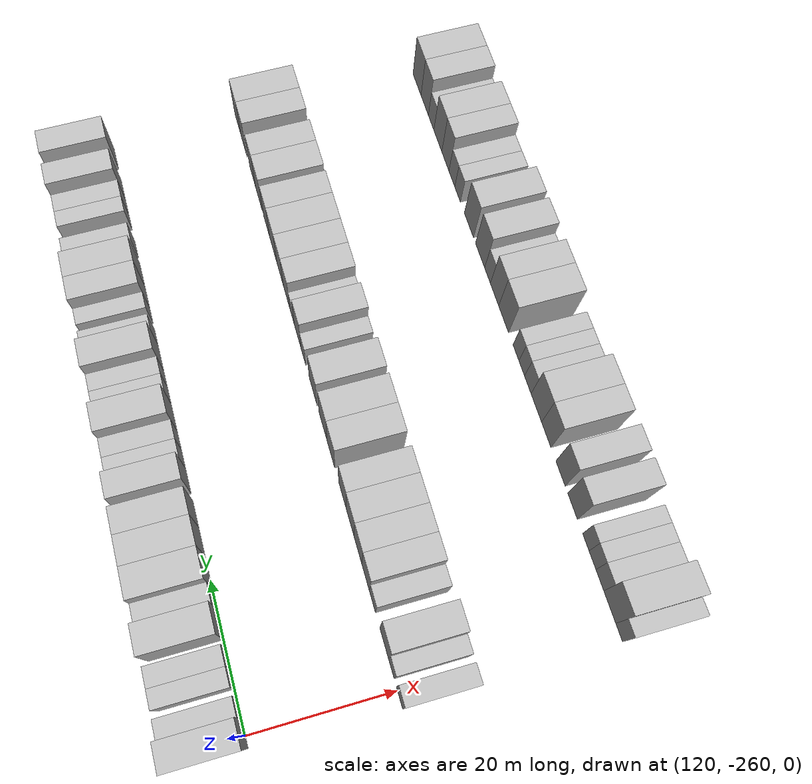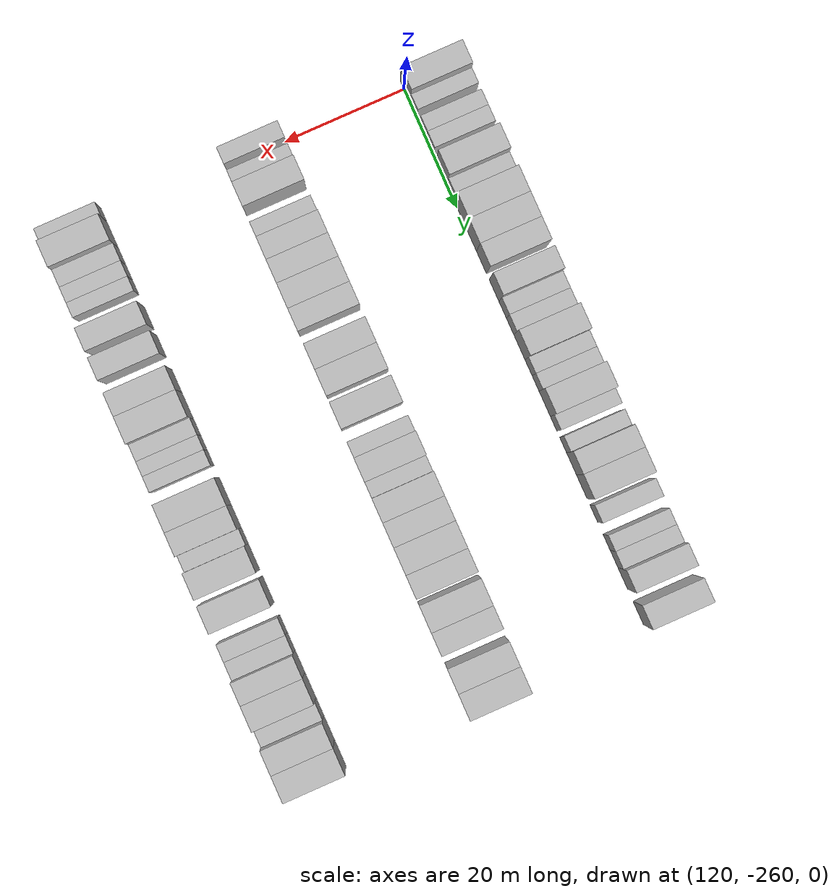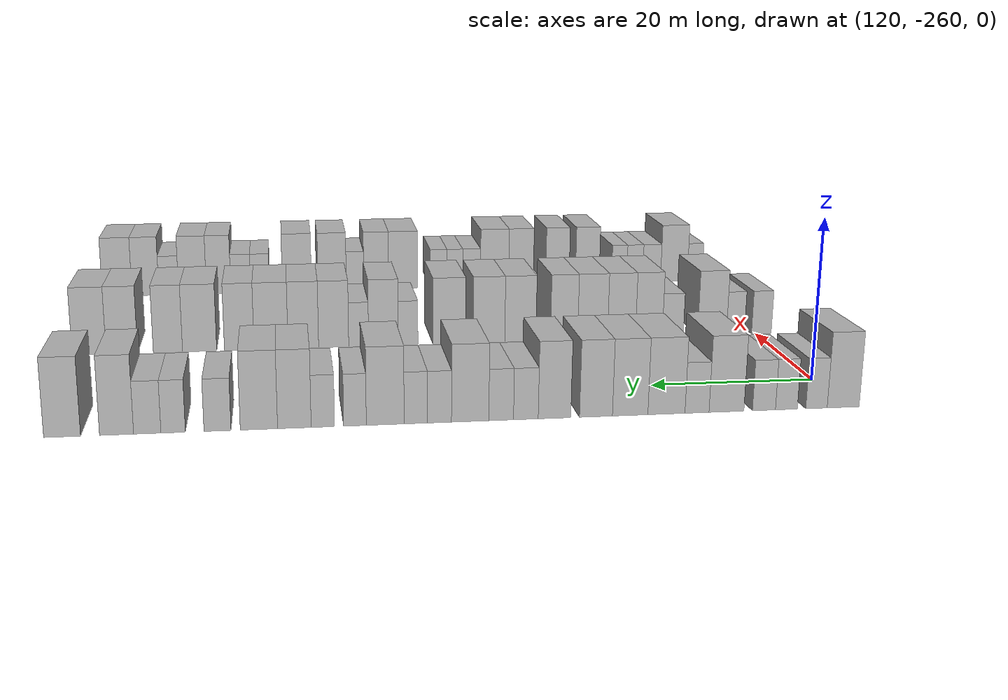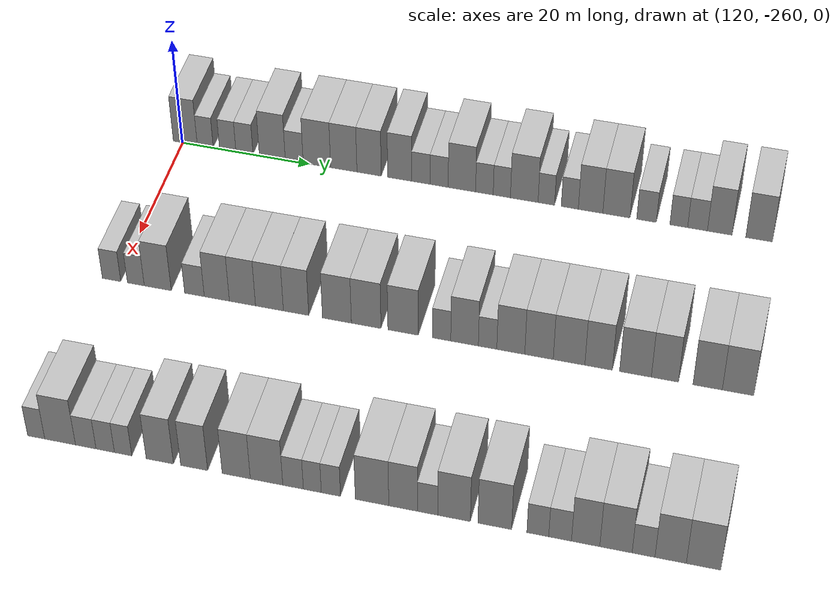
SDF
<sdf version="1.6">
 <world name="default">
  <model name="building_727">
   <static>1</static>
   <pose>115.0000 -259.6369 0 0.000000 0.000000 0.000000</pose>
   <link name="link">
    <pose>0 0 4.50 0 0 0</pose>
    <collision name="collision"><geometry><box><size>10.0000 3.8024 9.0000</size></box></geometry></collision>
    <visual name="visual">
     <cast_shadows>0</cast_shadows>
     <geometry><box><size>10.0000 3.8024 9.0000</size></box></geometry>
     <material>
      <script>
       <uri>model://HANNAS_wall/materials/scripts</uri>
       <uri>model://HANNAS_wall/materials/textures</uri>
       <name>vrc/HANNAS_wall</name>
      </script>
     </material>
    </visual>
   </link>
  </model>
  <model name="building_728">
   <static>1</static>
   <pose>115.0000 -256.4676 0 0.000000 0.000000 0.000000</pose>
   <link name="link">
    <pose>0 0 3.00 0 0 0</pose>
    <collision name="collision"><geometry><box><size>10.0000 2.5362 6.0000</size></box></geometry></collision>
    <visual name="visual">
     <cast_shadows>0</cast_shadows>
     <geometry><box><size>10.0000 2.5362 6.0000</size></box></geometry>
     <material>
      <script>
       <uri>model://HANNAS_wall/materials/scripts</uri>
       <uri>model://HANNAS_wall/materials/textures</uri>
       <name>vrc/HANNAS_wall</name>
      </script>
     </material>
    </visual>
   </link>
  </model>
  <model name="building_729">
   <static>1</static>
   <pose>115.0000 -252.9074 0 0.000000 0.000000 0.000000</pose>
   <link name="link">
    <pose>0 0 3.00 0 0 0</pose>
    <collision name="collision"><geometry><box><size>10.0000 2.5841 6.0000</size></box></geometry></collision>
    <visual name="visual">
     <cast_shadows>0</cast_shadows>
     <geometry><box><size>10.0000 2.5841 6.0000</size></box></geometry>
     <material>
      <script>
       <uri>model://HANNAS_wall/materials/scripts</uri>
       <uri>model://HANNAS_wall/materials/textures</uri>
       <name>vrc/HANNAS_wall</name>
      </script>
     </material>
    </visual>
   </link>
  </model>
  <model name="building_730">
   <static>1</static>
   <pose>115.0000 -250.2623 0 0.000000 0.000000 0.000000</pose>
   <link name="link">
    <pose>0 0 3.00 0 0 0</pose>
    <collision name="collision"><geometry><box><size>10.0000 2.7061 6.0000</size></box></geometry></collision>
    <visual name="visual">
     <cast_shadows>0</cast_shadows>
     <geometry><box><size>10.0000 2.7061 6.0000</size></box></geometry>
     <material>
      <script>
       <uri>model://HANNAS_wall/materials/scripts</uri>
       <uri>model://HANNAS_wall/materials/textures</uri>
       <name>vrc/HANNAS_wall</name>
      </script>
     </material>
    </visual>
   </link>
  </model>
  <model name="building_731">
   <static>1</static>
   <pose>115.0000 -245.8719 0 0.000000 0.000000 0.000000</pose>
   <link name="link">
    <pose>0 0 4.50 0 0 0</pose>
    <collision name="collision"><geometry><box><size>10.0000 4.0746 9.0000</size></box></geometry></collision>
    <visual name="visual">
     <cast_shadows>0</cast_shadows>
     <geometry><box><size>10.0000 4.0746 9.0000</size></box></geometry>
     <material>
      <script>
       <uri>model://HANNAS_wall/materials/scripts</uri>
       <uri>model://HANNAS_wall/materials/textures</uri>
       <name>vrc/HANNAS_wall</name>
      </script>
     </material>
    </visual>
   </link>
  </model>
  <model name="building_732">
   <static>1</static>
   <pose>115.0000 -242.4343 0 0.000000 0.000000 0.000000</pose>
   <link name="link">
    <pose>0 0 3.00 0 0 0</pose>
    <collision name="collision"><geometry><box><size>10.0000 2.8007 6.0000</size></box></geometry></collision>
    <visual name="visual">
     <cast_shadows>0</cast_shadows>
     <geometry><box><size>10.0000 2.8007 6.0000</size></box></geometry>
     <material>
      <script>
       <uri>model://HANNAS_wall/materials/scripts</uri>
       <uri>model://HANNAS_wall/materials/textures</uri>
       <name>vrc/HANNAS_wall</name>
      </script>
     </material>
    </visual>
   </link>
  </model>
  <model name="building_733">
   <static>1</static>
   <pose>115.0000 -238.8867 0 0.000000 0.000000 0.000000</pose>
   <link name="link">
    <pose>0 0 4.50 0 0 0</pose>
    <collision name="collision"><geometry><box><size>10.0000 4.2944 9.0000</size></box></geometry></collision>
    <visual name="visual">
     <cast_shadows>0</cast_shadows>
     <geometry><box><size>10.0000 4.2944 9.0000</size></box></geometry>
     <material>
      <script>
       <uri>model://HANNAS_wall/materials/scripts</uri>
       <uri>model://HANNAS_wall/materials/textures</uri>
       <name>vrc/HANNAS_wall</name>
      </script>
     </material>
    </visual>
   </link>
  </model>
  <model name="building_734">
   <static>1</static>
   <pose>115.0000 -234.6988 0 0.000000 0.000000 0.000000</pose>
   <link name="link">
    <pose>0 0 4.50 0 0 0</pose>
    <collision name="collision"><geometry><box><size>10.0000 4.0814 9.0000</size></box></geometry></collision>
    <visual name="visual">
     <cast_shadows>0</cast_shadows>
     <geometry><box><size>10.0000 4.0814 9.0000</size></box></geometry>
     <material>
      <script>
       <uri>model://HANNAS_wall/materials/scripts</uri>
       <uri>model://HANNAS_wall/materials/textures</uri>
       <name>vrc/HANNAS_wall</name>
      </script>
     </material>
    </visual>
   </link>
  </model>
  <model name="building_735">
   <static>1</static>
   <pose>115.0000 -230.7749 0 0.000000 0.000000 0.000000</pose>
   <link name="link">
    <pose>0 0 4.50 0 0 0</pose>
    <collision name="collision"><geometry><box><size>10.0000 3.7665 9.0000</size></box></geometry></collision>
    <visual name="visual">
     <cast_shadows>0</cast_shadows>
     <geometry><box><size>10.0000 3.7665 9.0000</size></box></geometry>
     <material>
      <script>
       <uri>model://HANNAS_wall/materials/scripts</uri>
       <uri>model://HANNAS_wall/materials/textures</uri>
       <name>vrc/HANNAS_wall</name>
      </script>
     </material>
    </visual>
   </link>
  </model>
  <model name="building_736">
   <static>1</static>
   <pose>115.0000 -226.0417 0 0.000000 0.000000 0.000000</pose>
   <link name="link">
    <pose>0 0 4.50 0 0 0</pose>
    <collision name="collision"><geometry><box><size>10.0000 3.7000 9.0000</size></box></geometry></collision>
    <visual name="visual">
     <cast_shadows>0</cast_shadows>
     <geometry><box><size>10.0000 3.7000 9.0000</size></box></geometry>
     <material>
      <script>
       <uri>model://HANNAS_wall/materials/scripts</uri>
       <uri>model://HANNAS_wall/materials/textures</uri>
       <name>vrc/HANNAS_wall</name>
      </script>
     </material>
    </visual>
   </link>
  </model>
  <model name="building_737">
   <static>1</static>
   <pose>115.0000 -222.7960 0 0.000000 0.000000 0.000000</pose>
   <link name="link">
    <pose>0 0 3.00 0 0 0</pose>
    <collision name="collision"><geometry><box><size>10.0000 2.7913 6.0000</size></box></geometry></collision>
    <visual name="visual">
     <cast_shadows>0</cast_shadows>
     <geometry><box><size>10.0000 2.7913 6.0000</size></box></geometry>
     <material>
      <script>
       <uri>model://HANNAS_wall/materials/scripts</uri>
       <uri>model://HANNAS_wall/materials/textures</uri>
       <name>vrc/HANNAS_wall</name>
      </script>
     </material>
    </visual>
   </link>
  </model>
  <model name="building_738">
   <static>1</static>
   <pose>115.0000 -220.0054 0 0.000000 0.000000 0.000000</pose>
   <link name="link">
    <pose>0 0 3.00 0 0 0</pose>
    <collision name="collision"><geometry><box><size>10.0000 2.7899 6.0000</size></box></geometry></collision>
    <visual name="visual">
     <cast_shadows>0</cast_shadows>
     <geometry><box><size>10.0000 2.7899 6.0000</size></box></geometry>
     <material>
      <script>
       <uri>model://HANNAS_wall/materials/scripts</uri>
       <uri>model://HANNAS_wall/materials/textures</uri>
       <name>vrc/HANNAS_wall</name>
      </script>
     </material>
    </visual>
   </link>
  </model>
  <model name="building_739">
   <static>1</static>
   <pose>115.0000 -216.5173 0 0.000000 0.000000 0.000000</pose>
   <link name="link">
    <pose>0 0 4.50 0 0 0</pose>
    <collision name="collision"><geometry><box><size>10.0000 4.1864 9.0000</size></box></geometry></collision>
    <visual name="visual">
     <cast_shadows>0</cast_shadows>
     <geometry><box><size>10.0000 4.1864 9.0000</size></box></geometry>
     <material>
      <script>
       <uri>model://HANNAS_wall/materials/scripts</uri>
       <uri>model://HANNAS_wall/materials/textures</uri>
       <name>vrc/HANNAS_wall</name>
      </script>
     </material>
    </visual>
   </link>
  </model>
  <model name="building_740">
   <static>1</static>
   <pose>115.0000 -213.0869 0 0.000000 0.000000 0.000000</pose>
   <link name="link">
    <pose>0 0 3.00 0 0 0</pose>
    <collision name="collision"><geometry><box><size>10.0000 2.6744 6.0000</size></box></geometry></collision>
    <visual name="visual">
     <cast_shadows>0</cast_shadows>
     <geometry><box><size>10.0000 2.6744 6.0000</size></box></geometry>
     <material>
      <script>
       <uri>model://HANNAS_wall/materials/scripts</uri>
       <uri>model://HANNAS_wall/materials/textures</uri>
       <name>vrc/HANNAS_wall</name>
      </script>
     </material>
    </visual>
   </link>
  </model>
  <model name="building_741">
   <static>1</static>
   <pose>115.0000 -210.4464 0 0.000000 0.000000 0.000000</pose>
   <link name="link">
    <pose>0 0 3.00 0 0 0</pose>
    <collision name="collision"><geometry><box><size>10.0000 2.6066 6.0000</size></box></geometry></collision>
    <visual name="visual">
     <cast_shadows>0</cast_shadows>
     <geometry><box><size>10.0000 2.6066 6.0000</size></box></geometry>
     <material>
      <script>
       <uri>model://HANNAS_wall/materials/scripts</uri>
       <uri>model://HANNAS_wall/materials/textures</uri>
       <name>vrc/HANNAS_wall</name>
      </script>
     </material>
    </visual>
   </link>
  </model>
  <model name="building_742">
   <static>1</static>
   <pose>115.0000 -207.0546 0 0.000000 0.000000 0.000000</pose>
   <link name="link">
    <pose>0 0 4.50 0 0 0</pose>
    <collision name="collision"><geometry><box><size>10.0000 4.1771 9.0000</size></box></geometry></collision>
    <visual name="visual">
     <cast_shadows>0</cast_shadows>
     <geometry><box><size>10.0000 4.1771 9.0000</size></box></geometry>
     <material>
      <script>
       <uri>model://HANNAS_wall/materials/scripts</uri>
       <uri>model://HANNAS_wall/materials/textures</uri>
       <name>vrc/HANNAS_wall</name>
      </script>
     </material>
    </visual>
   </link>
  </model>
  <model name="building_743">
   <static>1</static>
   <pose>115.0000 -203.7201 0 0.000000 0.000000 0.000000</pose>
   <link name="link">
    <pose>0 0 3.00 0 0 0</pose>
    <collision name="collision"><geometry><box><size>10.0000 2.4919 6.0000</size></box></geometry></collision>
    <visual name="visual">
     <cast_shadows>0</cast_shadows>
     <geometry><box><size>10.0000 2.4919 6.0000</size></box></geometry>
     <material>
      <script>
       <uri>model://HANNAS_wall/materials/scripts</uri>
       <uri>model://HANNAS_wall/materials/textures</uri>
       <name>vrc/HANNAS_wall</name>
      </script>
     </material>
    </visual>
   </link>
  </model>
  <model name="building_744">
   <static>1</static>
   <pose>115.0000 -200.1933 0 0.000000 0.000000 0.000000</pose>
   <link name="link">
    <pose>0 0 3.00 0 0 0</pose>
    <collision name="collision"><geometry><box><size>10.0000 2.5618 6.0000</size></box></geometry></collision>
    <visual name="visual">
     <cast_shadows>0</cast_shadows>
     <geometry><box><size>10.0000 2.5618 6.0000</size></box></geometry>
     <material>
      <script>
       <uri>model://HANNAS_wall/materials/scripts</uri>
       <uri>model://HANNAS_wall/materials/textures</uri>
       <name>vrc/HANNAS_wall</name>
      </script>
     </material>
    </visual>
   </link>
  </model>
  <model name="building_745">
   <static>1</static>
   <pose>115.0000 -197.0801 0 0.000000 0.000000 0.000000</pose>
   <link name="link">
    <pose>0 0 4.50 0 0 0</pose>
    <collision name="collision"><geometry><box><size>10.0000 3.6646 9.0000</size></box></geometry></collision>
    <visual name="visual">
     <cast_shadows>0</cast_shadows>
     <geometry><box><size>10.0000 3.6646 9.0000</size></box></geometry>
     <material>
      <script>
       <uri>model://HANNAS_wall/materials/scripts</uri>
       <uri>model://HANNAS_wall/materials/textures</uri>
       <name>vrc/HANNAS_wall</name>
      </script>
     </material>
    </visual>
   </link>
  </model>
  <model name="building_746">
   <static>1</static>
   <pose>115.0000 -193.2244 0 0.000000 0.000000 0.000000</pose>
   <link name="link">
    <pose>0 0 4.50 0 0 0</pose>
    <collision name="collision"><geometry><box><size>10.0000 4.0468 9.0000</size></box></geometry></collision>
    <visual name="visual">
     <cast_shadows>0</cast_shadows>
     <geometry><box><size>10.0000 4.0468 9.0000</size></box></geometry>
     <material>
      <script>
       <uri>model://HANNAS_wall/materials/scripts</uri>
       <uri>model://HANNAS_wall/materials/textures</uri>
       <name>vrc/HANNAS_wall</name>
      </script>
     </material>
    </visual>
   </link>
  </model>
  <model name="building_747">
   <static>1</static>
   <pose>115.0000 -188.7457 0 0.000000 0.000000 0.000000</pose>
   <link name="link">
    <pose>0 0 3.00 0 0 0</pose>
    <collision name="collision"><geometry><box><size>10.0000 2.9104 6.0000</size></box></geometry></collision>
    <visual name="visual">
     <cast_shadows>0</cast_shadows>
     <geometry><box><size>10.0000 2.9104 6.0000</size></box></geometry>
     <material>
      <script>
       <uri>model://HANNAS_wall/materials/scripts</uri>
       <uri>model://HANNAS_wall/materials/textures</uri>
       <name>vrc/HANNAS_wall</name>
      </script>
     </material>
    </visual>
   </link>
  </model>
  <model name="building_748">
   <static>1</static>
   <pose>115.0000 -183.9819 0 0.000000 0.000000 0.000000</pose>
   <link name="link">
    <pose>0 0 3.00 0 0 0</pose>
    <collision name="collision"><geometry><box><size>10.0000 2.6174 6.0000</size></box></geometry></collision>
    <visual name="visual">
     <cast_shadows>0</cast_shadows>
     <geometry><box><size>10.0000 2.6174 6.0000</size></box></geometry>
     <material>
      <script>
       <uri>model://HANNAS_wall/materials/scripts</uri>
       <uri>model://HANNAS_wall/materials/textures</uri>
       <name>vrc/HANNAS_wall</name>
      </script>
     </material>
    </visual>
   </link>
  </model>
  <model name="building_749">
   <static>1</static>
   <pose>115.0000 -181.2179 0 0.000000 0.000000 0.000000</pose>
   <link name="link">
    <pose>0 0 3.00 0 0 0</pose>
    <collision name="collision"><geometry><box><size>10.0000 2.9106 6.0000</size></box></geometry></collision>
    <visual name="visual">
     <cast_shadows>0</cast_shadows>
     <geometry><box><size>10.0000 2.9106 6.0000</size></box></geometry>
     <material>
      <script>
       <uri>model://HANNAS_wall/materials/scripts</uri>
       <uri>model://HANNAS_wall/materials/textures</uri>
       <name>vrc/HANNAS_wall</name>
      </script>
     </material>
    </visual>
   </link>
  </model>
  <model name="building_750">
   <static>1</static>
   <pose>115.0000 -177.9527 0 0.000000 0.000000 0.000000</pose>
   <link name="link">
    <pose>0 0 4.50 0 0 0</pose>
    <collision name="collision"><geometry><box><size>10.0000 3.6199 9.0000</size></box></geometry></collision>
    <visual name="visual">
     <cast_shadows>0</cast_shadows>
     <geometry><box><size>10.0000 3.6199 9.0000</size></box></geometry>
     <material>
      <script>
       <uri>model://HANNAS_wall/materials/scripts</uri>
       <uri>model://HANNAS_wall/materials/textures</uri>
       <name>vrc/HANNAS_wall</name>
      </script>
     </material>
    </visual>
   </link>
  </model>
  <model name="building_751">
   <static>1</static>
   <pose>115.0000 -172.1994 0 0.000000 0.000000 0.000000</pose>
   <link name="link">
    <pose>0 0 4.50 0 0 0</pose>
    <collision name="collision"><geometry><box><size>10.0000 3.8867 9.0000</size></box></geometry></collision>
    <visual name="visual">
     <cast_shadows>0</cast_shadows>
     <geometry><box><size>10.0000 3.8867 9.0000</size></box></geometry>
     <material>
      <script>
       <uri>model://HANNAS_wall/materials/scripts</uri>
       <uri>model://HANNAS_wall/materials/textures</uri>
       <name>vrc/HANNAS_wall</name>
      </script>
     </material>
    </visual>
   </link>
  </model>
  <model name="building_958">
   <static>1</static>
   <pose>145.0000 -260.8708 0 0.000000 0.000000 0.000000</pose>
   <link name="link">
    <pose>0 0 3.00 0 0 0</pose>
    <collision name="collision"><geometry><box><size>10.0000 2.7729 6.0000</size></box></geometry></collision>
    <visual name="visual">
     <cast_shadows>0</cast_shadows>
     <geometry><box><size>10.0000 2.7729 6.0000</size></box></geometry>
     <material>
      <script>
       <uri>model://HANNAS_wall/materials/scripts</uri>
       <uri>model://HANNAS_wall/materials/textures</uri>
       <name>vrc/HANNAS_wall</name>
      </script>
     </material>
    </visual>
   </link>
  </model>
  <model name="building_959">
   <static>1</static>
   <pose>145.0000 -257.2226 0 0.000000 0.000000 0.000000</pose>
   <link name="link">
    <pose>0 0 3.00 0 0 0</pose>
    <collision name="collision"><geometry><box><size>10.0000 2.5235 6.0000</size></box></geometry></collision>
    <visual name="visual">
     <cast_shadows>0</cast_shadows>
     <geometry><box><size>10.0000 2.5235 6.0000</size></box></geometry>
     <material>
      <script>
       <uri>model://HANNAS_wall/materials/scripts</uri>
       <uri>model://HANNAS_wall/materials/textures</uri>
       <name>vrc/HANNAS_wall</name>
      </script>
     </material>
    </visual>
   </link>
  </model>
  <model name="building_960">
   <static>1</static>
   <pose>145.0000 -253.9446 0 0.000000 0.000000 0.000000</pose>
   <link name="link">
    <pose>0 0 4.50 0 0 0</pose>
    <collision name="collision"><geometry><box><size>10.0000 4.0325 9.0000</size></box></geometry></collision>
    <visual name="visual">
     <cast_shadows>0</cast_shadows>
     <geometry><box><size>10.0000 4.0325 9.0000</size></box></geometry>
     <material>
      <script>
       <uri>model://HANNAS_wall/materials/scripts</uri>
       <uri>model://HANNAS_wall/materials/textures</uri>
       <name>vrc/HANNAS_wall</name>
      </script>
     </material>
    </visual>
   </link>
  </model>
  <model name="building_961">
   <static>1</static>
   <pose>145.0000 -248.4725 0 0.000000 0.000000 0.000000</pose>
   <link name="link">
    <pose>0 0 3.00 0 0 0</pose>
    <collision name="collision"><geometry><box><size>10.0000 2.9116 6.0000</size></box></geometry></collision>
    <visual name="visual">
     <cast_shadows>0</cast_shadows>
     <geometry><box><size>10.0000 2.9116 6.0000</size></box></geometry>
     <material>
      <script>
       <uri>model://HANNAS_wall/materials/scripts</uri>
       <uri>model://HANNAS_wall/materials/textures</uri>
       <name>vrc/HANNAS_wall</name>
      </script>
     </material>
    </visual>
   </link>
  </model>
  <model name="building_962">
   <static>1</static>
   <pose>145.0000 -245.1590 0 0.000000 0.000000 0.000000</pose>
   <link name="link">
    <pose>0 0 4.50 0 0 0</pose>
    <collision name="collision"><geometry><box><size>10.0000 3.7153 9.0000</size></box></geometry></collision>
    <visual name="visual">
     <cast_shadows>0</cast_shadows>
     <geometry><box><size>10.0000 3.7153 9.0000</size></box></geometry>
     <material>
      <script>
       <uri>model://HANNAS_wall/materials/scripts</uri>
       <uri>model://HANNAS_wall/materials/textures</uri>
       <name>vrc/HANNAS_wall</name>
      </script>
     </material>
    </visual>
   </link>
  </model>
  <model name="building_963">
   <static>1</static>
   <pose>145.0000 -241.3756 0 0.000000 0.000000 0.000000</pose>
   <link name="link">
    <pose>0 0 4.50 0 0 0</pose>
    <collision name="collision"><geometry><box><size>10.0000 3.8515 9.0000</size></box></geometry></collision>
    <visual name="visual">
     <cast_shadows>0</cast_shadows>
     <geometry><box><size>10.0000 3.8515 9.0000</size></box></geometry>
     <material>
      <script>
       <uri>model://HANNAS_wall/materials/scripts</uri>
       <uri>model://HANNAS_wall/materials/textures</uri>
       <name>vrc/HANNAS_wall</name>
      </script>
     </material>
    </visual>
   </link>
  </model>
  <model name="building_964">
   <static>1</static>
   <pose>145.0000 -237.4039 0 0.000000 0.000000 0.000000</pose>
   <link name="link">
    <pose>0 0 4.50 0 0 0</pose>
    <collision name="collision"><geometry><box><size>10.0000 4.0920 9.0000</size></box></geometry></collision>
    <visual name="visual">
     <cast_shadows>0</cast_shadows>
     <geometry><box><size>10.0000 4.0920 9.0000</size></box></geometry>
     <material>
      <script>
       <uri>model://HANNAS_wall/materials/scripts</uri>
       <uri>model://HANNAS_wall/materials/textures</uri>
       <name>vrc/HANNAS_wall</name>
      </script>
     </material>
    </visual>
   </link>
  </model>
  <model name="building_965">
   <static>1</static>
   <pose>145.0000 -233.5016 0 0.000000 0.000000 0.000000</pose>
   <link name="link">
    <pose>0 0 4.50 0 0 0</pose>
    <collision name="collision"><geometry><box><size>10.0000 3.7125 9.0000</size></box></geometry></collision>
    <visual name="visual">
     <cast_shadows>0</cast_shadows>
     <geometry><box><size>10.0000 3.7125 9.0000</size></box></geometry>
     <material>
      <script>
       <uri>model://HANNAS_wall/materials/scripts</uri>
       <uri>model://HANNAS_wall/materials/textures</uri>
       <name>vrc/HANNAS_wall</name>
      </script>
     </material>
    </visual>
   </link>
  </model>
  <model name="building_966">
   <static>1</static>
   <pose>145.0000 -227.5473 0 0.000000 0.000000 0.000000</pose>
   <link name="link">
    <pose>0 0 4.50 0 0 0</pose>
    <collision name="collision"><geometry><box><size>10.0000 4.1962 9.0000</size></box></geometry></collision>
    <visual name="visual">
     <cast_shadows>0</cast_shadows>
     <geometry><box><size>10.0000 4.1962 9.0000</size></box></geometry>
     <material>
      <script>
       <uri>model://HANNAS_wall/materials/scripts</uri>
       <uri>model://HANNAS_wall/materials/textures</uri>
       <name>vrc/HANNAS_wall</name>
      </script>
     </material>
    </visual>
   </link>
  </model>
  <model name="building_967">
   <static>1</static>
   <pose>145.0000 -223.3092 0 0.000000 0.000000 0.000000</pose>
   <link name="link">
    <pose>0 0 4.50 0 0 0</pose>
    <collision name="collision"><geometry><box><size>10.0000 4.2798 9.0000</size></box></geometry></collision>
    <visual name="visual">
     <cast_shadows>0</cast_shadows>
     <geometry><box><size>10.0000 4.2798 9.0000</size></box></geometry>
     <material>
      <script>
       <uri>model://HANNAS_wall/materials/scripts</uri>
       <uri>model://HANNAS_wall/materials/textures</uri>
       <name>vrc/HANNAS_wall</name>
      </script>
     </material>
    </visual>
   </link>
  </model>
  <model name="building_968">
   <static>1</static>
   <pose>145.0000 -217.9809 0 0.000000 0.000000 0.000000</pose>
   <link name="link">
    <pose>0 0 4.50 0 0 0</pose>
    <collision name="collision"><geometry><box><size>10.0000 4.3768 9.0000</size></box></geometry></collision>
    <visual name="visual">
     <cast_shadows>0</cast_shadows>
     <geometry><box><size>10.0000 4.3768 9.0000</size></box></geometry>
     <material>
      <script>
       <uri>model://HANNAS_wall/materials/scripts</uri>
       <uri>model://HANNAS_wall/materials/textures</uri>
       <name>vrc/HANNAS_wall</name>
      </script>
     </material>
    </visual>
   </link>
  </model>
  <model name="building_969">
   <static>1</static>
   <pose>145.0000 -212.4788 0 0.000000 0.000000 0.000000</pose>
   <link name="link">
    <pose>0 0 3.00 0 0 0</pose>
    <collision name="collision"><geometry><box><size>10.0000 2.6275 6.0000</size></box></geometry></collision>
    <visual name="visual">
     <cast_shadows>0</cast_shadows>
     <geometry><box><size>10.0000 2.6275 6.0000</size></box></geometry>
     <material>
      <script>
       <uri>model://HANNAS_wall/materials/scripts</uri>
       <uri>model://HANNAS_wall/materials/textures</uri>
       <name>vrc/HANNAS_wall</name>
      </script>
     </material>
    </visual>
   </link>
  </model>
  <model name="building_970">
   <static>1</static>
   <pose>145.0000 -209.2010 0 0.000000 0.000000 0.000000</pose>
   <link name="link">
    <pose>0 0 4.50 0 0 0</pose>
    <collision name="collision"><geometry><box><size>10.0000 3.9281 9.0000</size></box></geometry></collision>
    <visual name="visual">
     <cast_shadows>0</cast_shadows>
     <geometry><box><size>10.0000 3.9281 9.0000</size></box></geometry>
     <material>
      <script>
       <uri>model://HANNAS_wall/materials/scripts</uri>
       <uri>model://HANNAS_wall/materials/textures</uri>
       <name>vrc/HANNAS_wall</name>
      </script>
     </material>
    </visual>
   </link>
  </model>
  <model name="building_971">
   <static>1</static>
   <pose>145.0000 -205.9276 0 0.000000 0.000000 0.000000</pose>
   <link name="link">
    <pose>0 0 3.00 0 0 0</pose>
    <collision name="collision"><geometry><box><size>10.0000 2.6188 6.0000</size></box></geometry></collision>
    <visual name="visual">
     <cast_shadows>0</cast_shadows>
     <geometry><box><size>10.0000 2.6188 6.0000</size></box></geometry>
     <material>
      <script>
       <uri>model://HANNAS_wall/materials/scripts</uri>
       <uri>model://HANNAS_wall/materials/textures</uri>
       <name>vrc/HANNAS_wall</name>
      </script>
     </material>
    </visual>
   </link>
  </model>
  <model name="building_972">
   <static>1</static>
   <pose>145.0000 -202.6396 0 0.000000 0.000000 0.000000</pose>
   <link name="link">
    <pose>0 0 4.50 0 0 0</pose>
    <collision name="collision"><geometry><box><size>10.0000 3.9572 9.0000</size></box></geometry></collision>
    <visual name="visual">
     <cast_shadows>0</cast_shadows>
     <geometry><box><size>10.0000 3.9572 9.0000</size></box></geometry>
     <material>
      <script>
       <uri>model://HANNAS_wall/materials/scripts</uri>
       <uri>model://HANNAS_wall/materials/textures</uri>
       <name>vrc/HANNAS_wall</name>
      </script>
     </material>
    </visual>
   </link>
  </model>
  <model name="building_973">
   <static>1</static>
   <pose>145.0000 -198.6591 0 0.000000 0.000000 0.000000</pose>
   <link name="link">
    <pose>0 0 4.50 0 0 0</pose>
    <collision name="collision"><geometry><box><size>10.0000 4.0038 9.0000</size></box></geometry></collision>
    <visual name="visual">
     <cast_shadows>0</cast_shadows>
     <geometry><box><size>10.0000 4.0038 9.0000</size></box></geometry>
     <material>
      <script>
       <uri>model://HANNAS_wall/materials/scripts</uri>
       <uri>model://HANNAS_wall/materials/textures</uri>
       <name>vrc/HANNAS_wall</name>
      </script>
     </material>
    </visual>
   </link>
  </model>
  <model name="building_974">
   <static>1</static>
   <pose>145.0000 -194.4452 0 0.000000 0.000000 0.000000</pose>
   <link name="link">
    <pose>0 0 4.50 0 0 0</pose>
    <collision name="collision"><geometry><box><size>10.0000 4.4242 9.0000</size></box></geometry></collision>
    <visual name="visual">
     <cast_shadows>0</cast_shadows>
     <geometry><box><size>10.0000 4.4242 9.0000</size></box></geometry>
     <material>
      <script>
       <uri>model://HANNAS_wall/materials/scripts</uri>
       <uri>model://HANNAS_wall/materials/textures</uri>
       <name>vrc/HANNAS_wall</name>
      </script>
     </material>
    </visual>
   </link>
  </model>
  <model name="building_975">
   <static>1</static>
   <pose>145.0000 -190.3122 0 0.000000 0.000000 0.000000</pose>
   <link name="link">
    <pose>0 0 4.50 0 0 0</pose>
    <collision name="collision"><geometry><box><size>10.0000 3.8418 9.0000</size></box></geometry></collision>
    <visual name="visual">
     <cast_shadows>0</cast_shadows>
     <geometry><box><size>10.0000 3.8418 9.0000</size></box></geometry>
     <material>
      <script>
       <uri>model://HANNAS_wall/materials/scripts</uri>
       <uri>model://HANNAS_wall/materials/textures</uri>
       <name>vrc/HANNAS_wall</name>
      </script>
     </material>
    </visual>
   </link>
  </model>
  <model name="building_976">
   <static>1</static>
   <pose>145.0000 -185.1905 0 0.000000 0.000000 0.000000</pose>
   <link name="link">
    <pose>0 0 4.50 0 0 0</pose>
    <collision name="collision"><geometry><box><size>10.0000 4.4015 9.0000</size></box></geometry></collision>
    <visual name="visual">
     <cast_shadows>0</cast_shadows>
     <geometry><box><size>10.0000 4.4015 9.0000</size></box></geometry>
     <material>
      <script>
       <uri>model://HANNAS_wall/materials/scripts</uri>
       <uri>model://HANNAS_wall/materials/textures</uri>
       <name>vrc/HANNAS_wall</name>
      </script>
     </material>
    </visual>
   </link>
  </model>
  <model name="building_977">
   <static>1</static>
   <pose>145.0000 -181.1162 0 0.000000 0.000000 0.000000</pose>
   <link name="link">
    <pose>0 0 4.50 0 0 0</pose>
    <collision name="collision"><geometry><box><size>10.0000 3.7472 9.0000</size></box></geometry></collision>
    <visual name="visual">
     <cast_shadows>0</cast_shadows>
     <geometry><box><size>10.0000 3.7472 9.0000</size></box></geometry>
     <material>
      <script>
       <uri>model://HANNAS_wall/materials/scripts</uri>
       <uri>model://HANNAS_wall/materials/textures</uri>
       <name>vrc/HANNAS_wall</name>
      </script>
     </material>
    </visual>
   </link>
  </model>
  <model name="building_978">
   <static>1</static>
   <pose>145.0000 -175.2338 0 0.000000 0.000000 0.000000</pose>
   <link name="link">
    <pose>0 0 4.50 0 0 0</pose>
    <collision name="collision"><geometry><box><size>10.0000 4.0175 9.0000</size></box></geometry></collision>
    <visual name="visual">
     <cast_shadows>0</cast_shadows>
     <geometry><box><size>10.0000 4.0175 9.0000</size></box></geometry>
     <material>
      <script>
       <uri>model://HANNAS_wall/materials/scripts</uri>
       <uri>model://HANNAS_wall/materials/textures</uri>
       <name>vrc/HANNAS_wall</name>
      </script>
     </material>
    </visual>
   </link>
  </model>
  <model name="building_979">
   <static>1</static>
   <pose>145.0000 -171.0736 0 0.000000 0.000000 0.000000</pose>
   <link name="link">
    <pose>0 0 4.50 0 0 0</pose>
    <collision name="collision"><geometry><box><size>10.0000 4.3030 9.0000</size></box></geometry></collision>
    <visual name="visual">
     <cast_shadows>0</cast_shadows>
     <geometry><box><size>10.0000 4.3030 9.0000</size></box></geometry>
     <material>
      <script>
       <uri>model://HANNAS_wall/materials/scripts</uri>
       <uri>model://HANNAS_wall/materials/textures</uri>
       <name>vrc/HANNAS_wall</name>
      </script>
     </material>
    </visual>
   </link>
  </model>
  <model name="building_1182">
   <static>1</static>
   <pose>175.0000 -260.8826 0 0.000000 0.000000 0.000000</pose>
   <link name="link">
    <pose>0 0 3.00 0 0 0</pose>
    <collision name="collision"><geometry><box><size>10.0000 2.4197 6.0000</size></box></geometry></collision>
    <visual name="visual">
     <cast_shadows>0</cast_shadows>
     <geometry><box><size>10.0000 2.4197 6.0000</size></box></geometry>
     <material>
      <script>
       <uri>model://HANNAS_wall/materials/scripts</uri>
       <uri>model://HANNAS_wall/materials/textures</uri>
       <name>vrc/HANNAS_wall</name>
      </script>
     </material>
    </visual>
   </link>
  </model>
  <model name="building_1183">
   <static>1</static>
   <pose>175.0000 -257.5070 0 0.000000 0.000000 0.000000</pose>
   <link name="link">
    <pose>0 0 4.50 0 0 0</pose>
    <collision name="collision"><geometry><box><size>10.0000 4.3316 9.0000</size></box></geometry></collision>
    <visual name="visual">
     <cast_shadows>0</cast_shadows>
     <geometry><box><size>10.0000 4.3316 9.0000</size></box></geometry>
     <material>
      <script>
       <uri>model://HANNAS_wall/materials/scripts</uri>
       <uri>model://HANNAS_wall/materials/textures</uri>
       <name>vrc/HANNAS_wall</name>
      </script>
     </material>
    </visual>
   </link>
  </model>
  <model name="building_1184">
   <static>1</static>
   <pose>175.0000 -253.8980 0 0.000000 0.000000 0.000000</pose>
   <link name="link">
    <pose>0 0 3.00 0 0 0</pose>
    <collision name="collision"><geometry><box><size>10.0000 2.8863 6.0000</size></box></geometry></collision>
    <visual name="visual">
     <cast_shadows>0</cast_shadows>
     <geometry><box><size>10.0000 2.8863 6.0000</size></box></geometry>
     <material>
      <script>
       <uri>model://HANNAS_wall/materials/scripts</uri>
       <uri>model://HANNAS_wall/materials/textures</uri>
       <name>vrc/HANNAS_wall</name>
      </script>
     </material>
    </visual>
   </link>
  </model>
  <model name="building_1185">
   <static>1</static>
   <pose>175.0000 -251.1668 0 0.000000 0.000000 0.000000</pose>
   <link name="link">
    <pose>0 0 3.00 0 0 0</pose>
    <collision name="collision"><geometry><box><size>10.0000 2.5761 6.0000</size></box></geometry></collision>
    <visual name="visual">
     <cast_shadows>0</cast_shadows>
     <geometry><box><size>10.0000 2.5761 6.0000</size></box></geometry>
     <material>
      <script>
       <uri>model://HANNAS_wall/materials/scripts</uri>
       <uri>model://HANNAS_wall/materials/textures</uri>
       <name>vrc/HANNAS_wall</name>
      </script>
     </material>
    </visual>
   </link>
  </model>
  <model name="building_1186">
   <static>1</static>
   <pose>175.0000 -248.6651 0 0.000000 0.000000 0.000000</pose>
   <link name="link">
    <pose>0 0 3.00 0 0 0</pose>
    <collision name="collision"><geometry><box><size>10.0000 2.4274 6.0000</size></box></geometry></collision>
    <visual name="visual">
     <cast_shadows>0</cast_shadows>
     <geometry><box><size>10.0000 2.4274 6.0000</size></box></geometry>
     <material>
      <script>
       <uri>model://HANNAS_wall/materials/scripts</uri>
       <uri>model://HANNAS_wall/materials/textures</uri>
       <name>vrc/HANNAS_wall</name>
      </script>
     </material>
    </visual>
   </link>
  </model>
  <model name="building_1187">
   <static>1</static>
   <pose>175.0000 -243.5567 0 0.000000 0.000000 0.000000</pose>
   <link name="link">
    <pose>0 0 4.50 0 0 0</pose>
    <collision name="collision"><geometry><box><size>10.0000 3.7893 9.0000</size></box></geometry></collision>
    <visual name="visual">
     <cast_shadows>0</cast_shadows>
     <geometry><box><size>10.0000 3.7893 9.0000</size></box></geometry>
     <material>
      <script>
       <uri>model://HANNAS_wall/materials/scripts</uri>
       <uri>model://HANNAS_wall/materials/textures</uri>
       <name>vrc/HANNAS_wall</name>
      </script>
     </material>
    </visual>
   </link>
  </model>
  <model name="building_1188">
   <static>1</static>
   <pose>175.0000 -238.8052 0 0.000000 0.000000 0.000000</pose>
   <link name="link">
    <pose>0 0 4.50 0 0 0</pose>
    <collision name="collision"><geometry><box><size>10.0000 3.7137 9.0000</size></box></geometry></collision>
    <visual name="visual">
     <cast_shadows>0</cast_shadows>
     <geometry><box><size>10.0000 3.7137 9.0000</size></box></geometry>
     <material>
      <script>
       <uri>model://HANNAS_wall/materials/scripts</uri>
       <uri>model://HANNAS_wall/materials/textures</uri>
       <name>vrc/HANNAS_wall</name>
      </script>
     </material>
    </visual>
   </link>
  </model>
  <model name="building_1189">
   <static>1</static>
   <pose>175.0000 -233.0195 0 0.000000 0.000000 0.000000</pose>
   <link name="link">
    <pose>0 0 4.50 0 0 0</pose>
    <collision name="collision"><geometry><box><size>10.0000 3.8577 9.0000</size></box></geometry></collision>
    <visual name="visual">
     <cast_shadows>0</cast_shadows>
     <geometry><box><size>10.0000 3.8577 9.0000</size></box></geometry>
     <material>
      <script>
       <uri>model://HANNAS_wall/materials/scripts</uri>
       <uri>model://HANNAS_wall/materials/textures</uri>
       <name>vrc/HANNAS_wall</name>
      </script>
     </material>
    </visual>
   </link>
  </model>
  <model name="building_1190">
   <static>1</static>
   <pose>175.0000 -228.8762 0 0.000000 0.000000 0.000000</pose>
   <link name="link">
    <pose>0 0 4.50 0 0 0</pose>
    <collision name="collision"><geometry><box><size>10.0000 4.4288 9.0000</size></box></geometry></collision>
    <visual name="visual">
     <cast_shadows>0</cast_shadows>
     <geometry><box><size>10.0000 4.4288 9.0000</size></box></geometry>
     <material>
      <script>
       <uri>model://HANNAS_wall/materials/scripts</uri>
       <uri>model://HANNAS_wall/materials/textures</uri>
       <name>vrc/HANNAS_wall</name>
      </script>
     </material>
    </visual>
   </link>
  </model>
  <model name="building_1191">
   <static>1</static>
   <pose>175.0000 -225.2661 0 0.000000 0.000000 0.000000</pose>
   <link name="link">
    <pose>0 0 3.00 0 0 0</pose>
    <collision name="collision"><geometry><box><size>10.0000 2.7914 6.0000</size></box></geometry></collision>
    <visual name="visual">
     <cast_shadows>0</cast_shadows>
     <geometry><box><size>10.0000 2.7914 6.0000</size></box></geometry>
     <material>
      <script>
       <uri>model://HANNAS_wall/materials/scripts</uri>
       <uri>model://HANNAS_wall/materials/textures</uri>
       <name>vrc/HANNAS_wall</name>
      </script>
     </material>
    </visual>
   </link>
  </model>
  <model name="building_1192">
   <static>1</static>
   <pose>175.0000 -222.6528 0 0.000000 0.000000 0.000000</pose>
   <link name="link">
    <pose>0 0 3.00 0 0 0</pose>
    <collision name="collision"><geometry><box><size>10.0000 2.4352 6.0000</size></box></geometry></collision>
    <visual name="visual">
     <cast_shadows>0</cast_shadows>
     <geometry><box><size>10.0000 2.4352 6.0000</size></box></geometry>
     <material>
      <script>
       <uri>model://HANNAS_wall/materials/scripts</uri>
       <uri>model://HANNAS_wall/materials/textures</uri>
       <name>vrc/HANNAS_wall</name>
      </script>
     </material>
    </visual>
   </link>
  </model>
  <model name="building_1193">
   <static>1</static>
   <pose>175.0000 -220.1419 0 0.000000 0.000000 0.000000</pose>
   <link name="link">
    <pose>0 0 3.00 0 0 0</pose>
    <collision name="collision"><geometry><box><size>10.0000 2.5866 6.0000</size></box></geometry></collision>
    <visual name="visual">
     <cast_shadows>0</cast_shadows>
     <geometry><box><size>10.0000 2.5866 6.0000</size></box></geometry>
     <material>
      <script>
       <uri>model://HANNAS_wall/materials/scripts</uri>
       <uri>model://HANNAS_wall/materials/textures</uri>
       <name>vrc/HANNAS_wall</name>
      </script>
     </material>
    </visual>
   </link>
  </model>
  <model name="building_1194">
   <static>1</static>
   <pose>175.0000 -214.6060 0 0.000000 0.000000 0.000000</pose>
   <link name="link">
    <pose>0 0 4.50 0 0 0</pose>
    <collision name="collision"><geometry><box><size>10.0000 4.4850 9.0000</size></box></geometry></collision>
    <visual name="visual">
     <cast_shadows>0</cast_shadows>
     <geometry><box><size>10.0000 4.4850 9.0000</size></box></geometry>
     <material>
      <script>
       <uri>model://HANNAS_wall/materials/scripts</uri>
       <uri>model://HANNAS_wall/materials/textures</uri>
       <name>vrc/HANNAS_wall</name>
      </script>
     </material>
    </visual>
   </link>
  </model>
  <model name="building_1195">
   <static>1</static>
   <pose>175.0000 -210.4463 0 0.000000 0.000000 0.000000</pose>
   <link name="link">
    <pose>0 0 4.50 0 0 0</pose>
    <collision name="collision"><geometry><box><size>10.0000 3.8344 9.0000</size></box></geometry></collision>
    <visual name="visual">
     <cast_shadows>0</cast_shadows>
     <geometry><box><size>10.0000 3.8344 9.0000</size></box></geometry>
     <material>
      <script>
       <uri>model://HANNAS_wall/materials/scripts</uri>
       <uri>model://HANNAS_wall/materials/textures</uri>
       <name>vrc/HANNAS_wall</name>
      </script>
     </material>
    </visual>
   </link>
  </model>
  <model name="building_1196">
   <static>1</static>
   <pose>175.0000 -207.1847 0 0.000000 0.000000 0.000000</pose>
   <link name="link">
    <pose>0 0 3.00 0 0 0</pose>
    <collision name="collision"><geometry><box><size>10.0000 2.6887 6.0000</size></box></geometry></collision>
    <visual name="visual">
     <cast_shadows>0</cast_shadows>
     <geometry><box><size>10.0000 2.6887 6.0000</size></box></geometry>
     <material>
      <script>
       <uri>model://HANNAS_wall/materials/scripts</uri>
       <uri>model://HANNAS_wall/materials/textures</uri>
       <name>vrc/HANNAS_wall</name>
      </script>
     </material>
    </visual>
   </link>
  </model>
  <model name="building_1197">
   <static>1</static>
   <pose>175.0000 -203.6772 0 0.000000 0.000000 0.000000</pose>
   <link name="link">
    <pose>0 0 4.50 0 0 0</pose>
    <collision name="collision"><geometry><box><size>10.0000 4.3264 9.0000</size></box></geometry></collision>
    <visual name="visual">
     <cast_shadows>0</cast_shadows>
     <geometry><box><size>10.0000 4.3264 9.0000</size></box></geometry>
     <material>
      <script>
       <uri>model://HANNAS_wall/materials/scripts</uri>
       <uri>model://HANNAS_wall/materials/textures</uri>
       <name>vrc/HANNAS_wall</name>
      </script>
     </material>
    </visual>
   </link>
  </model>
  <model name="building_1198">
   <static>1</static>
   <pose>175.0000 -198.2978 0 0.000000 0.000000 0.000000</pose>
   <link name="link">
    <pose>0 0 4.50 0 0 0</pose>
    <collision name="collision"><geometry><box><size>10.0000 4.4324 9.0000</size></box></geometry></collision>
    <visual name="visual">
     <cast_shadows>0</cast_shadows>
     <geometry><box><size>10.0000 4.4324 9.0000</size></box></geometry>
     <material>
      <script>
       <uri>model://HANNAS_wall/materials/scripts</uri>
       <uri>model://HANNAS_wall/materials/textures</uri>
       <name>vrc/HANNAS_wall</name>
      </script>
     </material>
    </visual>
   </link>
  </model>
  <model name="building_1199">
   <static>1</static>
   <pose>175.0000 -192.6560 0 0.000000 0.000000 0.000000</pose>
   <link name="link">
    <pose>0 0 3.00 0 0 0</pose>
    <collision name="collision"><geometry><box><size>10.0000 2.8513 6.0000</size></box></geometry></collision>
    <visual name="visual">
     <cast_shadows>0</cast_shadows>
     <geometry><box><size>10.0000 2.8513 6.0000</size></box></geometry>
     <material>
      <script>
       <uri>model://HANNAS_wall/materials/scripts</uri>
       <uri>model://HANNAS_wall/materials/textures</uri>
       <name>vrc/HANNAS_wall</name>
      </script>
     </material>
    </visual>
   </link>
  </model>
  <model name="building_1200">
   <static>1</static>
   <pose>175.0000 -189.7471 0 0.000000 0.000000 0.000000</pose>
   <link name="link">
    <pose>0 0 3.00 0 0 0</pose>
    <collision name="collision"><geometry><box><size>10.0000 2.9664 6.0000</size></box></geometry></collision>
    <visual name="visual">
     <cast_shadows>0</cast_shadows>
     <geometry><box><size>10.0000 2.9664 6.0000</size></box></geometry>
     <material>
      <script>
       <uri>model://HANNAS_wall/materials/scripts</uri>
       <uri>model://HANNAS_wall/materials/textures</uri>
       <name>vrc/HANNAS_wall</name>
      </script>
     </material>
    </visual>
   </link>
  </model>
  <model name="building_1201">
   <static>1</static>
   <pose>175.0000 -186.4259 0 0.000000 0.000000 0.000000</pose>
   <link name="link">
    <pose>0 0 4.50 0 0 0</pose>
    <collision name="collision"><geometry><box><size>10.0000 3.6760 9.0000</size></box></geometry></collision>
    <visual name="visual">
     <cast_shadows>0</cast_shadows>
     <geometry><box><size>10.0000 3.6760 9.0000</size></box></geometry>
     <material>
      <script>
       <uri>model://HANNAS_wall/materials/scripts</uri>
       <uri>model://HANNAS_wall/materials/textures</uri>
       <name>vrc/HANNAS_wall</name>
      </script>
     </material>
    </visual>
   </link>
  </model>
  <model name="building_1202">
   <static>1</static>
   <pose>175.0000 -182.4993 0 0.000000 0.000000 0.000000</pose>
   <link name="link">
    <pose>0 0 4.50 0 0 0</pose>
    <collision name="collision"><geometry><box><size>10.0000 4.1771 9.0000</size></box></geometry></collision>
    <visual name="visual">
     <cast_shadows>0</cast_shadows>
     <geometry><box><size>10.0000 4.1771 9.0000</size></box></geometry>
     <material>
      <script>
       <uri>model://HANNAS_wall/materials/scripts</uri>
       <uri>model://HANNAS_wall/materials/textures</uri>
       <name>vrc/HANNAS_wall</name>
      </script>
     </material>
    </visual>
   </link>
  </model>
  <model name="building_1203">
   <static>1</static>
   <pose>175.0000 -178.9425 0 0.000000 0.000000 0.000000</pose>
   <link name="link">
    <pose>0 0 3.00 0 0 0</pose>
    <collision name="collision"><geometry><box><size>10.0000 2.9366 6.0000</size></box></geometry></collision>
    <visual name="visual">
     <cast_shadows>0</cast_shadows>
     <geometry><box><size>10.0000 2.9366 6.0000</size></box></geometry>
     <material>
      <script>
       <uri>model://HANNAS_wall/materials/scripts</uri>
       <uri>model://HANNAS_wall/materials/textures</uri>
       <name>vrc/HANNAS_wall</name>
      </script>
     </material>
    </visual>
   </link>
  </model>
  <model name="building_1204">
   <static>1</static>
   <pose>175.0000 -175.4658 0 0.000000 0.000000 0.000000</pose>
   <link name="link">
    <pose>0 0 4.50 0 0 0</pose>
    <collision name="collision"><geometry><box><size>10.0000 4.0167 9.0000</size></box></geometry></collision>
    <visual name="visual">
     <cast_shadows>0</cast_shadows>
     <geometry><box><size>10.0000 4.0167 9.0000</size></box></geometry>
     <material>
      <script>
       <uri>model://HANNAS_wall/materials/scripts</uri>
       <uri>model://HANNAS_wall/materials/textures</uri>
       <name>vrc/HANNAS_wall</name>
      </script>
     </material>
    </visual>
   </link>
  </model>
  <model name="building_1205">
   <static>1</static>
   <pose>175.0000 -171.2660 0 0.000000 0.000000 0.000000</pose>
   <link name="link">
    <pose>0 0 4.50 0 0 0</pose>
    <collision name="collision"><geometry><box><size>10.0000 4.3829 9.0000</size></box></geometry></collision>
    <visual name="visual">
     <cast_shadows>0</cast_shadows>
     <geometry><box><size>10.0000 4.3829 9.0000</size></box></geometry>
     <material>
      <script>
       <uri>model://HANNAS_wall/materials/scripts</uri>
       <uri>model://HANNAS_wall/materials/textures</uri>
       <name>vrc/HANNAS_wall</name>
      </script>
     </material>
    </visual>
   </link>
  </model>
 </world>
</sdf>
